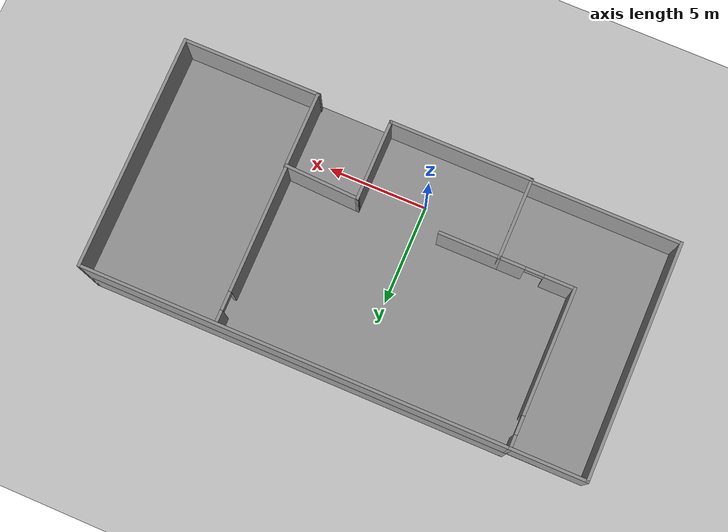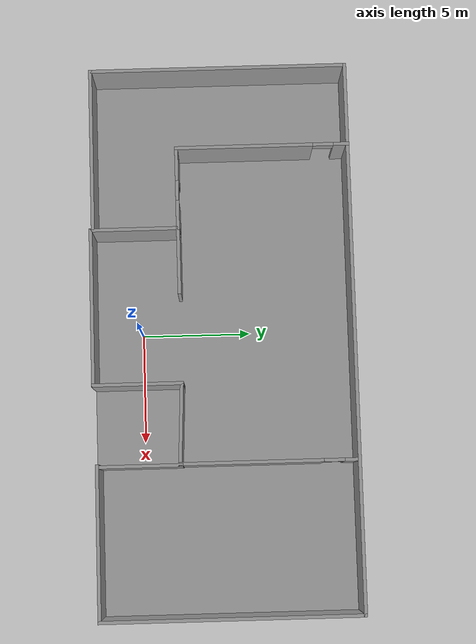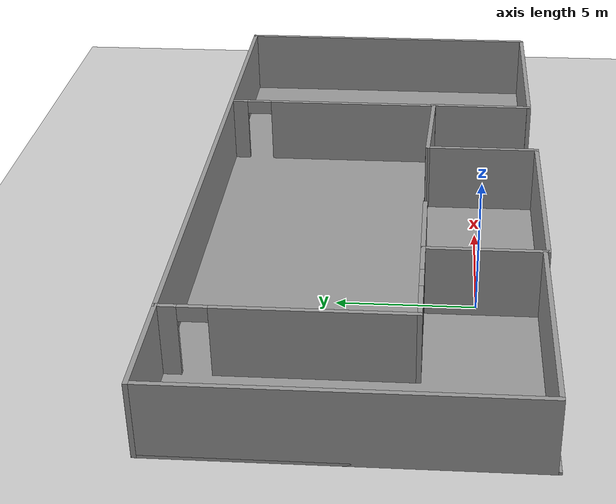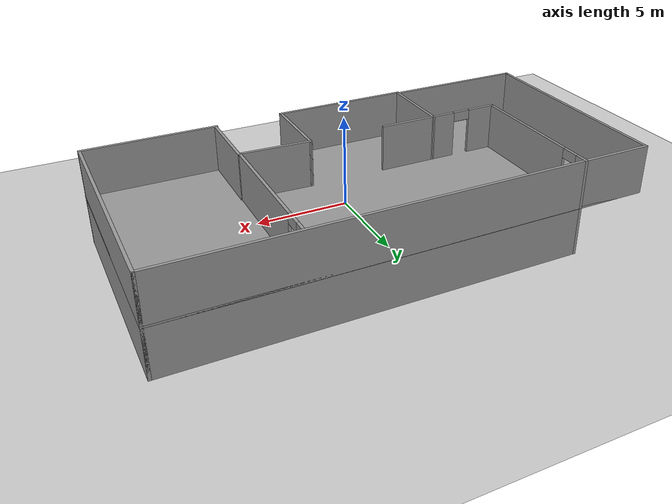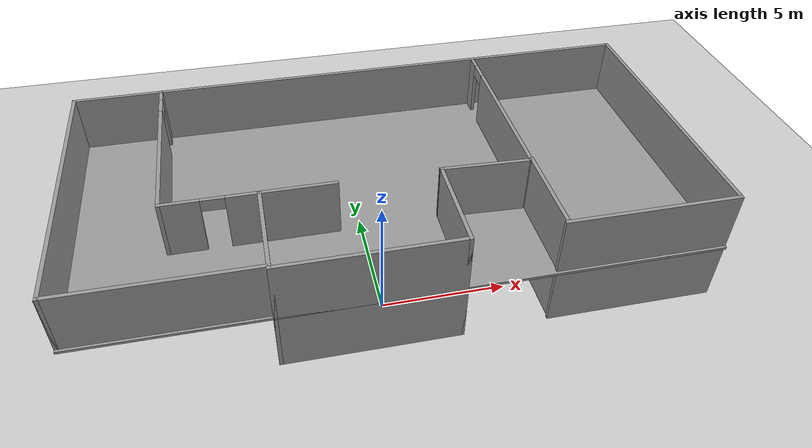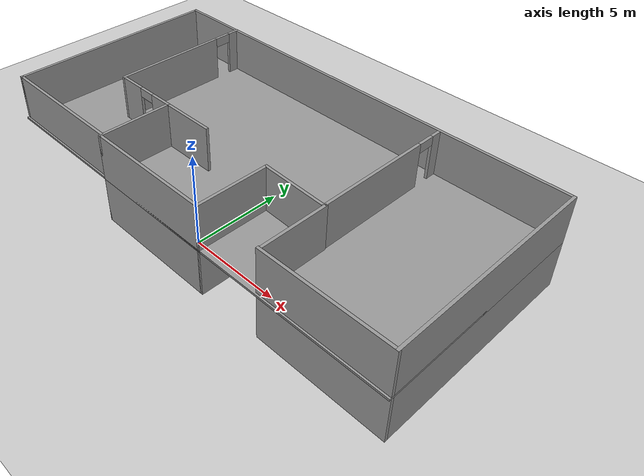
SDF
<sdf version="1.6">
 <world name="default">
  <light name="sun" type="directional">
   <pose>0 0 10 0 -0 0</pose>
   <diffuse>0.8 0.8 0.8 1</diffuse>
   <specular>0.2 0.2 0.2 1</specular>
   <attenuation>
    <range>1000</range>
    <constant>0.9</constant>
    <linear>0.01</linear>
    <quadratic>0.001</quadratic>
   </attenuation>
   <direction>-0.5 0.1 -0.9</direction>
  </light>
  <model name="ground_plane">
   <static>1</static>
   <link name="link">
    <collision name="collision">
     <geometry><plane><normal>0 0 1</normal><size>100 100</size></plane></geometry>
     <surface><friction><ode><mu>100</mu><mu2>50</mu2></ode></friction></surface>
    </collision>
    <visual name="visual">
     <cast_shadows>0</cast_shadows>
     <geometry><plane><normal>0 0 1</normal><size>100 100</size></plane></geometry>
     <material>
      <script><uri>file://media/materials/scripts/gazebo.material</uri><name>Gazebo/Grey</name></script>
     </material>
    </visual>
   </link>
  </model>
  <gravity>0 0 -9.8</gravity>
  <magnetic_field>6e-06 2.3e-05 -4.2e-05</magnetic_field>
  <atmosphere type="adiabatic"/>
  <physics name="default_physics" default="0" type="ode">
   <max_step_size>0.001</max_step_size>
   <real_time_factor>1</real_time_factor>
   <real_time_update_rate>1000</real_time_update_rate>
  </physics>
  <scene><ambient>0.4 0.4 0.4 1</ambient><background>0.7 0.7 0.7 1</background><shadows>1</shadows></scene>
  <audio><device>default</device></audio>
  <spherical_coordinates>
   <surface_model>EARTH_WGS84</surface_model>
   <latitude_deg>0</latitude_deg>
   <longitude_deg>0</longitude_deg>
   <elevation>0</elevation>
   <heading_deg>0</heading_deg>
  </spherical_coordinates>
  <model name="room1">
   <pose>0.73 3.755 0 0 -0 0</pose>
   <link name="Floor_0">
    <collision name="Floor_0_Collision">
     <geometry><box><size>24.35 11.6 0.1</size></box></geometry>
     <pose>0 0 0.05 0 -0 0</pose>
    </collision>
    <visual name="Floor_0_Visual">
     <pose>0 0 0.05 0 -0 0</pose>
     <geometry><box><size>24.35 11.6 0.1</size></box></geometry>
     <material>
      <script><uri>file://media/materials/scripts/gazebo.material</uri><name>Gazebo/Grey</name></script>
      <ambient>1 1 1 1</ambient>
     </material>
     <meta><layer>1</layer></meta>
    </visual>
    <pose>0 0 2.5 0 -0 0</pose>
   </link>
   <link name="Wall_10">
    <collision name="Wall_10_Collision">
     <geometry><box><size>11.5 0.15 2.5</size></box></geometry>
     <pose>0 0 1.25 0 -0 0</pose>
    </collision>
    <visual name="Wall_10_Visual">
     <pose>0 0 1.25 0 -0 0</pose>
     <geometry><box><size>11.5 0.15 2.5</size></box></geometry>
     <material>
      <script><uri>file://media/materials/scripts/gazebo.material</uri><name>Gazebo/Grey</name></script>
      <ambient>1 1 1 1</ambient>
     </material>
     <meta><layer>0</layer></meta>
    </visual>
    <pose>12.1 0.05 0 0 -0 -1.5708</pose>
   </link>
   <link name="Wall_11">
    <collision name="Wall_11_Collision">
     <geometry><box><size>6.79046 0.15 2.5</size></box></geometry>
     <pose>0 0 1.25 0 -0 0</pose>
    </collision>
    <visual name="Wall_11_Visual">
     <pose>0 0 1.25 0 -0 0</pose>
     <geometry><box><size>6.79046 0.15 2.5</size></box></geometry>
     <material>
      <script><uri>file://media/materials/scripts/gazebo.material</uri><name>Gazebo/Grey</name></script>
      <ambient>1 1 1 1</ambient>
     </material>
     <meta><layer>0</layer></meta>
    </visual>
    <pose>8.77977 -5.625 0 0 -0 3.14159</pose>
   </link>
   <link name="Wall_12">
    <collision name="Wall_12_Collision">
     <geometry><box><size>3.75 0.15 2.5</size></box></geometry>
     <pose>0 0 1.25 0 -0 0</pose>
    </collision>
    <visual name="Wall_12_Visual">
     <pose>0 0 1.25 0 -0 0</pose>
     <geometry><box><size>3.75 0.15 2.5</size></box></geometry>
     <material>
      <script><uri>file://media/materials/scripts/gazebo.material</uri><name>Gazebo/Grey</name></script>
      <ambient>1 1 1 1</ambient>
     </material>
     <meta><layer>0</layer></meta>
    </visual>
    <pose>5.5 -3.78454 0 0 -0 1.5708</pose>
   </link>
   <link name="Wall_13">
    <collision name="Wall_13_Collision">
     <geometry><box><size>3.66275 0.15 2.5</size></box></geometry>
     <pose>0 0 1.25 0 -0 0</pose>
    </collision>
    <visual name="Wall_13_Visual">
     <pose>0 0 1.25 0 -0 0</pose>
     <geometry><box><size>3.66275 0.15 2.5</size></box></geometry>
     <material>
      <script><uri>file://media/materials/scripts/gazebo.material</uri><name>Gazebo/Grey</name></script>
      <ambient>1 1 1 1</ambient>
     </material>
     <meta><layer>0</layer></meta>
    </visual>
    <pose>3.70477 -1.95 0 0 -0 3.09888</pose>
   </link>
   <link name="Wall_15">
    <collision name="Wall_15_Collision">
     <geometry><box><size>3 0.15 2.5</size></box></geometry>
     <pose>0 0 1.25 0 -0 0</pose>
    </collision>
    <visual name="Wall_15_Visual">
     <pose>0 0 1.25 0 -0 0</pose>
     <geometry><box><size>3 0.15 2.5</size></box></geometry>
     <material>
      <script><uri>file://media/materials/scripts/gazebo.material</uri><name>Gazebo/Grey</name></script>
      <ambient>1 1 1 1</ambient>
     </material>
     <meta><layer>0</layer></meta>
    </visual>
    <pose>-3.475 -1.875 0 0 -0 0</pose>
   </link>
   <link name="Wall_17">
    <collision name="Wall_17_Collision">
     <geometry><box><size>4 0.15 2.5</size></box></geometry>
     <pose>0 0 1.25 0 -0 0</pose>
    </collision>
    <visual name="Wall_17_Visual">
     <pose>0 0 1.25 0 -0 0</pose>
     <geometry><box><size>4 0.15 2.5</size></box></geometry>
     <material>
      <script><uri>file://media/materials/scripts/gazebo.material</uri><name>Gazebo/Grey</name></script>
      <ambient>1 1 1 1</ambient>
     </material>
     <meta><layer>1</layer></meta>
    </visual>
    <pose>-4.9 -3.8 2.5 0 -0 1.5708</pose>
   </link>
   <link name="Wall_18">
    <collision name="Wall_18_Collision">
     <geometry><box><size>7 0.15 2.5</size></box></geometry>
     <pose>0 0 1.25 0 -0 0</pose>
    </collision>
    <visual name="Wall_18_Visual">
     <pose>0 0 1.25 0 -0 0</pose>
     <geometry><box><size>7 0.15 2.5</size></box></geometry>
     <material>
      <script><uri>file://media/materials/scripts/gazebo.material</uri><name>Gazebo/Grey</name></script>
      <ambient>1 1 1 1</ambient>
     </material>
     <meta><layer>1</layer></meta>
    </visual>
    <pose>-1.475 -5.725 2.5 0 -0 0</pose>
   </link>
   <link name="Wall_19">
    <collision name="Wall_19_Collision">
     <geometry><box><size>4 0.15 2.5</size></box></geometry>
     <pose>0 0 1.25 0 -0 0</pose>
    </collision>
    <visual name="Wall_19_Visual">
     <pose>0 0 1.25 0 -0 0</pose>
     <geometry><box><size>4 0.15 2.5</size></box></geometry>
     <material>
      <script><uri>file://media/materials/scripts/gazebo.material</uri><name>Gazebo/Grey</name></script>
      <ambient>1 1 1 1</ambient>
     </material>
     <meta><layer>1</layer></meta>
    </visual>
    <pose>1.95 -3.8 2.5 0 -0 1.5708</pose>
   </link>
   <link name="Wall_2">
    <collision name="Wall_2_Collision">
     <geometry><box><size>4 0.15 2.5</size></box></geometry>
     <pose>0 0 1.25 0 -0 0</pose>
    </collision>
    <visual name="Wall_2_Visual">
     <pose>0 0 1.25 0 -0 0</pose>
     <geometry><box><size>4 0.15 2.5</size></box></geometry>
     <material>
      <script><uri>file://media/materials/scripts/gazebo.material</uri><name>Gazebo/Grey</name></script>
      <ambient>1 1 1 1</ambient>
     </material>
     <meta><layer>0</layer></meta>
    </visual>
    <pose>-4.9 -3.8 0 0 -0 1.5708</pose>
   </link>
   <link name="Wall_20">
    <pose>-6.7 -1.875 2.5 0 -0 3.14159</pose>
    <visual name="Wall_20_Visual_0">
     <pose>-1.21887 0 1.25 0 -0 0</pose>
     <geometry><box><size>1.31226 0.15 2.5</size></box></geometry>
     <material>
      <script><uri>file://media/materials/scripts/gazebo.material</uri><name>Gazebo/Grey</name></script>
      <ambient>1 1 1 1</ambient>
     </material>
     <meta><layer>1</layer></meta>
    </visual>
    <collision name="Wall_20_Collision_0">
     <geometry><box><size>1.31226 0.15 2.5</size></box></geometry>
     <pose>-1.21887 0 1.25 0 -0 0</pose>
    </collision>
    <visual name="Wall_20_Visual_1">
     <pose>1.10613 0 1.25 0 -0 0</pose>
     <geometry><box><size>1.53774 0.15 2.5</size></box></geometry>
     <material>
      <script><uri>file://media/materials/scripts/gazebo.material</uri><name>Gazebo/Grey</name></script>
      <ambient>1 1 1 1</ambient>
     </material>
     <meta><layer>1</layer></meta>
    </visual>
    <collision name="Wall_20_Collision_1">
     <geometry><box><size>1.53774 0.15 2.5</size></box></geometry>
     <pose>1.10613 0 1.25 0 -0 0</pose>
    </collision>
    <visual name="Wall_20_Visual_2">
     <pose>-0.112739 0 2.25 0 -0 0</pose>
     <geometry><box><size>0.9 0.15 0.5</size></box></geometry>
     <material>
      <script><uri>file://media/materials/scripts/gazebo.material</uri><name>Gazebo/Grey</name></script>
      <ambient>1 1 1 1</ambient>
     </material>
     <meta><layer>1</layer></meta>
    </visual>
    <collision name="Wall_20_Collision_2">
     <geometry><box><size>0.9 0.15 0.5</size></box></geometry>
     <pose>-0.112739 0 2.25 0 -0 0</pose>
    </collision>
   </link>
   <link name="Wall_21">
    <pose>-8.5 1.925 2.5 0 -0 1.5708</pose>
    <visual name="Wall_21_Visual_0">
     <pose>-0.803001 0 1.25 0 -0 0</pose>
     <geometry><box><size>6.144 0.15 2.5</size></box></geometry>
     <material>
      <script><uri>file://media/materials/scripts/gazebo.material</uri><name>Gazebo/Grey</name></script>
      <ambient>1 1 1 1</ambient>
     </material>
     <meta><layer>1</layer></meta>
    </visual>
    <collision name="Wall_21_Collision_0">
     <geometry><box><size>6.144 0.15 2.5</size></box></geometry>
     <pose>-0.803001 0 1.25 0 -0 0</pose>
    </collision>
    <visual name="Wall_21_Visual_1">
     <pose>3.522 0 1.25 0 -0 0</pose>
     <geometry><box><size>0.706003 0.15 2.5</size></box></geometry>
     <material>
      <script><uri>file://media/materials/scripts/gazebo.material</uri><name>Gazebo/Grey</name></script>
      <ambient>1 1 1 1</ambient>
     </material>
     <meta><layer>1</layer></meta>
    </visual>
    <collision name="Wall_21_Collision_1">
     <geometry><box><size>0.706003 0.15 2.5</size></box></geometry>
     <pose>3.522 0 1.25 0 -0 0</pose>
    </collision>
    <visual name="Wall_21_Visual_2">
     <pose>2.719 0 2.25 0 -0 0</pose>
     <geometry><box><size>0.9 0.15 0.5</size></box></geometry>
     <material>
      <script><uri>file://media/materials/scripts/gazebo.material</uri><name>Gazebo/Grey</name></script>
      <ambient>1 1 1 1</ambient>
     </material>
     <meta><layer>1</layer></meta>
    </visual>
    <collision name="Wall_21_Collision_2">
     <geometry><box><size>0.9 0.15 0.5</size></box></geometry>
     <pose>2.719 0 2.25 0 -0 0</pose>
    </collision>
   </link>
   <link name="Wall_22">
    <collision name="Wall_22_Collision">
     <geometry><box><size>20.75 0.15 2.5</size></box></geometry>
     <pose>0 0 1.25 0 -0 0</pose>
    </collision>
    <visual name="Wall_22_Visual">
     <pose>0 0 1.25 0 -0 0</pose>
     <geometry><box><size>20.75 0.15 2.5</size></box></geometry>
     <material>
      <script><uri>file://media/materials/scripts/gazebo.material</uri><name>Gazebo/Grey</name></script>
      <ambient>1 1 1 1</ambient>
     </material>
     <meta><layer>1</layer></meta>
    </visual>
    <pose>1.8 5.725 2.5 0 -0 0</pose>
   </link>
   <link name="Wall_23">
    <collision name="Wall_23_Collision">
     <geometry><box><size>11.5 0.15 2.5</size></box></geometry>
     <pose>0 0 1.25 0 -0 0</pose>
    </collision>
    <visual name="Wall_23_Visual">
     <pose>0 0 1.25 0 -0 0</pose>
     <geometry><box><size>11.5 0.15 2.5</size></box></geometry>
     <material>
      <script><uri>file://media/materials/scripts/gazebo.material</uri><name>Gazebo/Grey</name></script>
      <ambient>1 1 1 1</ambient>
     </material>
     <meta><layer>1</layer></meta>
    </visual>
    <pose>12.1 0.05 2.5 0 -0 -1.5708</pose>
   </link>
   <link name="Wall_24">
    <collision name="Wall_24_Collision">
     <geometry><box><size>6.79045 0.15 2.5</size></box></geometry>
     <pose>0 0 1.25 0 -0 0</pose>
    </collision>
    <visual name="Wall_24_Visual">
     <pose>0 0 1.25 0 -0 0</pose>
     <geometry><box><size>6.79045 0.15 2.5</size></box></geometry>
     <material>
      <script><uri>file://media/materials/scripts/gazebo.material</uri><name>Gazebo/Grey</name></script>
      <ambient>1 1 1 1</ambient>
     </material>
     <meta><layer>1</layer></meta>
    </visual>
    <pose>8.77977 -5.625 2.5 0 -0 3.14159</pose>
   </link>
   <link name="Wall_25">
    <collision name="Wall_25_Collision">
     <geometry><box><size>3.75 0.15 2.5</size></box></geometry>
     <pose>0 0 1.25 0 -0 0</pose>
    </collision>
    <visual name="Wall_25_Visual">
     <pose>0 0 1.25 0 -0 0</pose>
     <geometry><box><size>3.75 0.15 2.5</size></box></geometry>
     <material>
      <script><uri>file://media/materials/scripts/gazebo.material</uri><name>Gazebo/Grey</name></script>
      <ambient>1 1 1 1</ambient>
     </material>
     <meta><layer>1</layer></meta>
    </visual>
    <pose>5.5 -3.78454 2.5 0 -0 1.5708</pose>
   </link>
   <link name="Wall_26">
    <collision name="Wall_26_Collision">
     <geometry><box><size>3.66275 0.15 2.5</size></box></geometry>
     <pose>0 0 1.25 0 -0 0</pose>
    </collision>
    <visual name="Wall_26_Visual">
     <pose>0 0 1.25 0 -0 0</pose>
     <geometry><box><size>3.66275 0.15 2.5</size></box></geometry>
     <material>
      <script><uri>file://media/materials/scripts/gazebo.material</uri><name>Gazebo/Grey</name></script>
      <ambient>1 1 1 1</ambient>
     </material>
     <meta><layer>1</layer></meta>
    </visual>
    <pose>3.70477 -1.95 2.5 0 -0 3.09888</pose>
   </link>
   <link name="Wall_27">
    <collision name="Wall_27_Collision">
     <geometry><box><size>3 0.15 2.5</size></box></geometry>
     <pose>0 0 1.25 0 -0 0</pose>
    </collision>
    <visual name="Wall_27_Visual">
     <pose>0 0 1.25 0 -0 0</pose>
     <geometry><box><size>3 0.15 2.5</size></box></geometry>
     <material>
      <script><uri>file://media/materials/scripts/gazebo.material</uri><name>Gazebo/Grey</name></script>
      <ambient>1 1 1 1</ambient>
     </material>
     <meta><layer>1</layer></meta>
    </visual>
    <pose>-3.475 -1.875 2.5 0 -0 0</pose>
   </link>
   <link name="Wall_28">
    <pose>5.45954 1.775 2.5 0 -0 1.5708</pose>
    <visual name="Wall_28_Visual_0">
     <pose>-0.728001 0 1.25 0 -0 0</pose>
     <geometry><box><size>6.294 0.15 2.5</size></box></geometry>
     <material>
      <script><uri>file://media/materials/scripts/gazebo.material</uri><name>Gazebo/Grey</name></script>
      <ambient>1 1 1 1</ambient>
     </material>
     <meta><layer>1</layer></meta>
    </visual>
    <collision name="Wall_28_Collision_0">
     <geometry><box><size>6.294 0.15 2.5</size></box></geometry>
     <pose>-0.728001 0 1.25 0 -0 0</pose>
    </collision>
    <visual name="Wall_28_Visual_1">
     <pose>3.597 0 1.25 0 -0 0</pose>
     <geometry><box><size>0.556003 0.15 2.5</size></box></geometry>
     <material>
      <script><uri>file://media/materials/scripts/gazebo.material</uri><name>Gazebo/Grey</name></script>
      <ambient>1 1 1 1</ambient>
     </material>
     <meta><layer>1</layer></meta>
    </visual>
    <collision name="Wall_28_Collision_1">
     <geometry><box><size>0.556003 0.15 2.5</size></box></geometry>
     <pose>3.597 0 1.25 0 -0 0</pose>
    </collision>
    <visual name="Wall_28_Visual_2">
     <pose>2.869 0 2.25 0 -0 0</pose>
     <geometry><box><size>0.9 0.15 0.5</size></box></geometry>
     <material>
      <script><uri>file://media/materials/scripts/gazebo.material</uri><name>Gazebo/Grey</name></script>
      <ambient>1 1 1 1</ambient>
     </material>
     <meta><layer>1</layer></meta>
    </visual>
    <collision name="Wall_28_Collision_2">
     <geometry><box><size>0.9 0.15 0.5</size></box></geometry>
     <pose>2.869 0 2.25 0 -0 0</pose>
    </collision>
   </link>
   <link name="Wall_31">
    <collision name="Wall_31_Collision">
     <geometry><box><size>3.75 0.15 2.5</size></box></geometry>
     <pose>0 0 1.25 0 -0 0</pose>
    </collision>
    <visual name="Wall_31_Visual">
     <pose>0 0 1.25 0 -0 0</pose>
     <geometry><box><size>3.75 0.15 2.5</size></box></geometry>
     <material>
      <script><uri>file://media/materials/scripts/gazebo.material</uri><name>Gazebo/Grey</name></script>
      <ambient>1 1 1 1</ambient>
     </material>
     <meta><layer>1</layer></meta>
    </visual>
    <pose>-10.3 5.725 2.5 0 -0 3.14159</pose>
   </link>
   <link name="Wall_32">
    <collision name="Wall_32_Collision">
     <geometry><box><size>11.5 0.15 2.5</size></box></geometry>
     <pose>0 0 1.25 0 -0 0</pose>
    </collision>
    <visual name="Wall_32_Visual">
     <pose>0 0 1.25 0 -0 0</pose>
     <geometry><box><size>11.5 0.15 2.5</size></box></geometry>
     <material>
      <script><uri>file://media/materials/scripts/gazebo.material</uri><name>Gazebo/Grey</name></script>
      <ambient>1 1 1 1</ambient>
     </material>
     <meta><layer>1</layer></meta>
    </visual>
    <pose>-12.1 0.05 2.5 0 -0 -1.5708</pose>
   </link>
   <link name="Wall_33">
    <collision name="Wall_33_Collision">
     <geometry><box><size>7.25 0.15 2.5</size></box></geometry>
     <pose>0 0 1.25 0 -0 0</pose>
    </collision>
    <visual name="Wall_33_Visual">
     <pose>0 0 1.25 0 -0 0</pose>
     <geometry><box><size>7.25 0.15 2.5</size></box></geometry>
     <material>
      <script><uri>file://media/materials/scripts/gazebo.material</uri><name>Gazebo/Grey</name></script>
      <ambient>1 1 1 1</ambient>
     </material>
     <meta><layer>1</layer></meta>
    </visual>
    <pose>-8.55 -5.625 2.5 0 -0 0</pose>
   </link>
   <link name="Wall_4">
    <collision name="Wall_4_Collision">
     <geometry><box><size>7 0.15 2.5</size></box></geometry>
     <pose>0 0 1.25 0 -0 0</pose>
    </collision>
    <visual name="Wall_4_Visual">
     <pose>0 0 1.25 0 -0 0</pose>
     <geometry><box><size>7 0.15 2.5</size></box></geometry>
     <material>
      <script><uri>file://media/materials/scripts/gazebo.material</uri><name>Gazebo/Grey</name></script>
      <ambient>1 1 1 1</ambient>
     </material>
     <meta><layer>0</layer></meta>
    </visual>
    <pose>-1.475 -5.725 0 0 -0 0</pose>
   </link>
   <link name="Wall_5">
    <collision name="Wall_5_Collision">
     <geometry><box><size>4 0.15 2.5</size></box></geometry>
     <pose>0 0 1.25 0 -0 0</pose>
    </collision>
    <visual name="Wall_5_Visual">
     <pose>0 0 1.25 0 -0 0</pose>
     <geometry><box><size>4 0.15 2.5</size></box></geometry>
     <material>
      <script><uri>file://media/materials/scripts/gazebo.material</uri><name>Gazebo/Grey</name></script>
      <ambient>1 1 1 1</ambient>
     </material>
     <meta><layer>0</layer></meta>
    </visual>
    <pose>1.95 -3.8 0 0 -0 1.5708</pose>
   </link>
   <link name="Wall_7">
    <collision name="Wall_7_Collision">
     <geometry><box><size>3.75 0.15 2.5</size></box></geometry>
     <pose>0 0 1.25 0 -0 0</pose>
    </collision>
    <visual name="Wall_7_Visual">
     <pose>0 0 1.25 0 -0 0</pose>
     <geometry><box><size>3.75 0.15 2.5</size></box></geometry>
     <material>
      <script><uri>file://media/materials/scripts/gazebo.material</uri><name>Gazebo/Grey</name></script>
      <ambient>1 1 1 1</ambient>
     </material>
     <meta><layer>0</layer></meta>
    </visual>
    <pose>-6.7 -1.875 0 0 -0 3.14159</pose>
   </link>
   <link name="Wall_8">
    <collision name="Wall_8_Collision">
     <geometry><box><size>7.75 0.15 2.5</size></box></geometry>
     <pose>0 0 1.25 0 -0 0</pose>
    </collision>
    <visual name="Wall_8_Visual">
     <pose>0 0 1.25 0 -0 0</pose>
     <geometry><box><size>7.75 0.15 2.5</size></box></geometry>
     <material>
      <script><uri>file://media/materials/scripts/gazebo.material</uri><name>Gazebo/Grey</name></script>
      <ambient>1 1 1 1</ambient>
     </material>
     <meta><layer>0</layer></meta>
    </visual>
    <pose>-8.5 1.925 0 0 -0 1.5708</pose>
   </link>
   <link name="Wall_9">
    <collision name="Wall_9_Collision">
     <geometry><box><size>20.75 0.15 2.5</size></box></geometry>
     <pose>0 0 1.25 0 -0 0</pose>
    </collision>
    <visual name="Wall_9_Visual">
     <pose>0 0 1.25 0 -0 0</pose>
     <geometry><box><size>20.75 0.15 2.5</size></box></geometry>
     <material>
      <script><uri>file://media/materials/scripts/gazebo.material</uri><name>Gazebo/Grey</name></script>
      <ambient>1 1 1 1</ambient>
     </material>
     <meta><layer>0</layer></meta>
    </visual>
    <pose>1.8 5.725 0 0 -0 0</pose>
   </link>
   <static>1</static>
  </model>
 </world>
</sdf>
